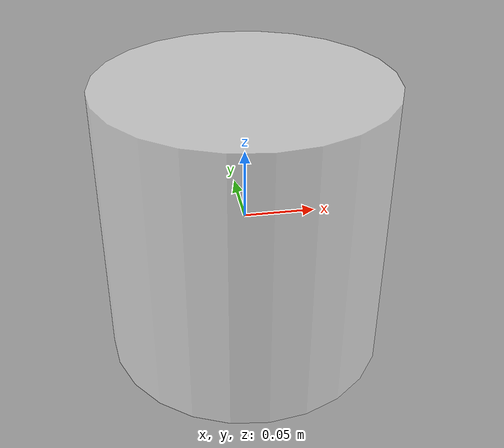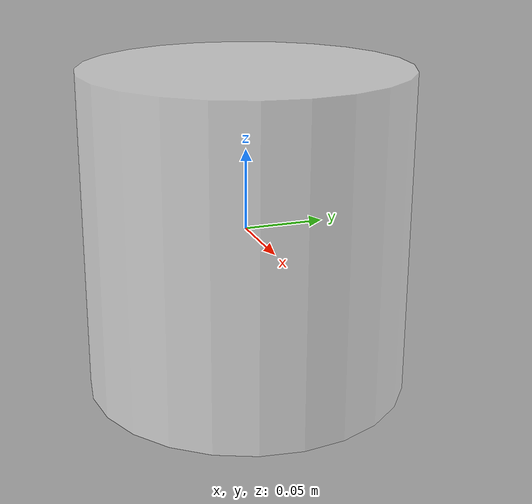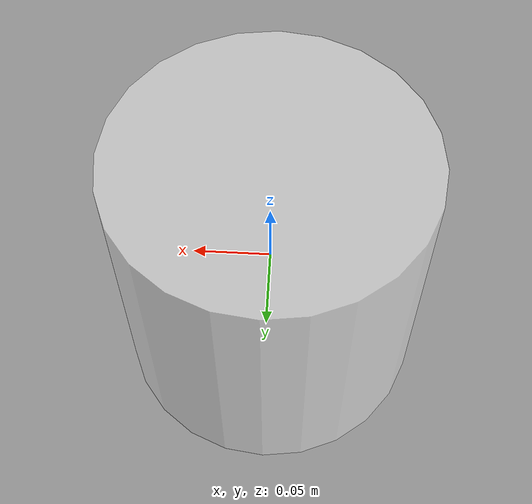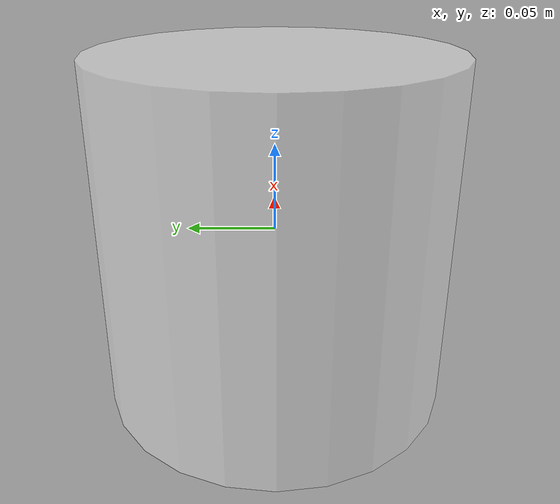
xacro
<?xml version="1.0"?>
<robot xmlns:xacro="http://www.ros.org/wiki/xacro" name="first_robot">
    <xacro:macro name ="base_link" params="length radius">
        <!--机器人的身体部分-->
        <link name="base_link">
        <!--部件的外观描述-->
            <visual>
                <origin xyz="0.0 0.0 0.0" rpy="0.0 0.0 0.0"/>
                <!--几何形状-->
                <geometry>
                    <cylinder radius="${radius}" length="${length}"/>
                </geometry>
                <!--材质和颜色描述-->
                <material name="white">
                    <color rgba="1.0 1.0 1.0 0.5"/>
                </material>
            </visual>
        </link>
    </xacro:macro>

    <xacro:macro name ="imu_link" params="imu_name xyz">
         <!--机器人的IMU部件，惯性测量传感器-->
        <link name="${imu_name}_link">
            <visual>
                <origin xyz="0.0 0.0 0.0" rpy="0.0 0.0 0.0"/>
                <geometry>
                    <box size="0.02 0.02 0.02"/>
                </geometry>
                <material name="blue">
                    <color rgba="0.0 0.0 1.0 0.5"/>
                </material>
            </visual>
        </link>

        <!--连接身体和IMU的关节-->
        <joint name="${imu_name}_joint" type="fixed">
            <parent link="base_link"/>
            <child link="${imu_name}_link"/>
            <origin xyz="${xyz}" rpy="0.0 0.0 0.0"/>
        </joint>
    </xacro:macro>

    <xacro:base_link length="0.2" radius="0.1"/>
    <xacro:imu_link imu_name="imu_up" xyz="0.0 0.0 0.03"/>
    <xacro:imu_link imu_name="imu_down" xyz="0.0 0.0 -0.03"/>
</robot>
